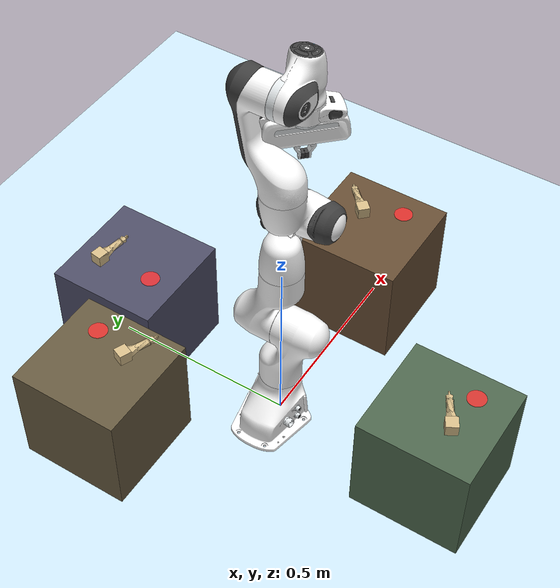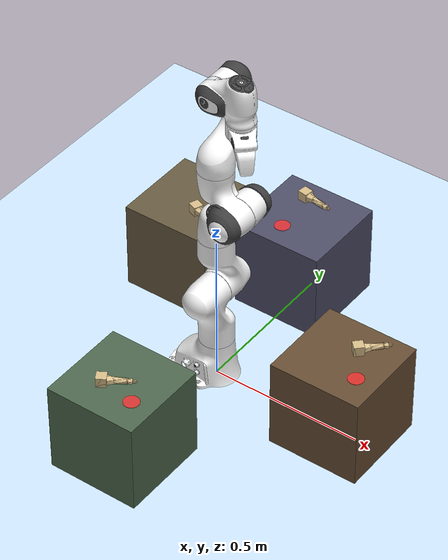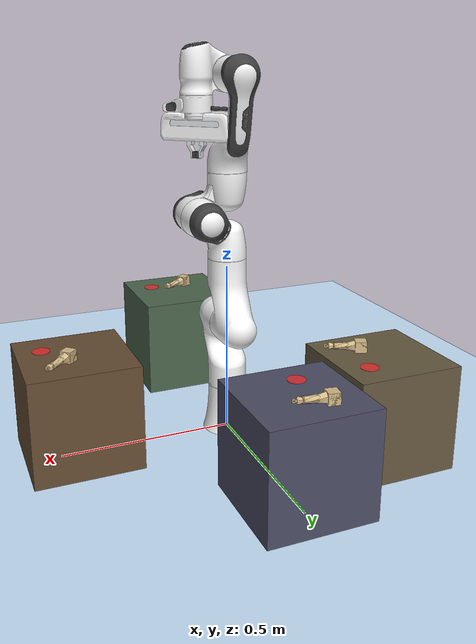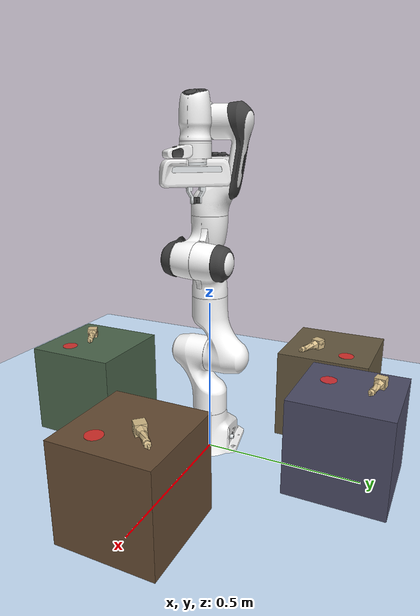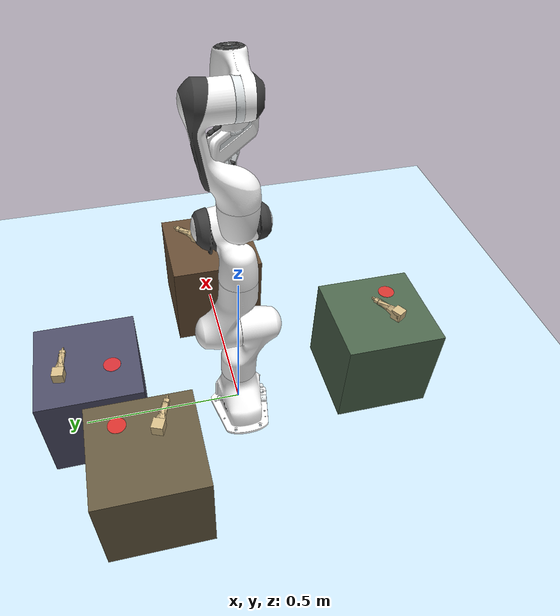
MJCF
<?xml version='1.0' encoding='utf-8'?>
<mujoco model="panda">
  <compiler angle="radian" meshdir="assets" autolimits="true" />

  <option integrator="implicit" />
  <option gravity="0 0 -9.81" />

  <default>
    <default class="panda">
      <material specular="0.5" shininess="0.25" />
      <joint armature="0.1" damping="1" axis="0 0 1" range="-2.8973 2.8973" />
      <general dyntype="none" biastype="none" ctrlrange="-87 87" forcerange="-87 87" />
      <default class="finger">
        <joint axis="0 1 0" type="slide" range="0 0.04" />
      </default>

      <default class="visual">
        <geom type="mesh" contype="0" conaffinity="0" group="2" />
      </default>
      <default class="collision">
        <geom type="mesh" group="3" />
        <default class="fingertip_pad_collision_1">
          <geom type="box" size="0.0085 0.004 0.0085" pos="0 0.0055 0.0445" />
        </default>
        <default class="fingertip_pad_collision_2">
          <geom type="box" size="0.003 0.002 0.003" pos="0.0055 0.002 0.05" />
        </default>
        <default class="fingertip_pad_collision_3">
          <geom type="box" size="0.003 0.002 0.003" pos="-0.0055 0.002 0.05" />
        </default>
        <default class="fingertip_pad_collision_4">
          <geom type="box" size="0.003 0.002 0.0035" pos="0.0055 0.002 0.0395" />
        </default>
        <default class="fingertip_pad_collision_5">
          <geom type="box" size="0.003 0.002 0.0035" pos="-0.0055 0.002 0.0395" />
        </default>
      </default>
    </default>
  </default>

  <asset>
    <material class="panda" name="white" rgba="1 1 1 1" />
    <material class="panda" name="off_white" rgba="0.901961 0.921569 0.929412 1" />
    <material class="panda" name="black" rgba="0.25 0.25 0.25 1" />
    <material class="panda" name="green" rgba="0 1 0 1" />
    <material class="panda" name="light_blue" rgba="0.039216 0.541176 0.780392 1" />

    <mesh name="link0_c" file="link0.stl" />
    <mesh name="link1_c" file="link1.stl" />
    <mesh name="link2_c" file="link2.stl" />
    <mesh name="link3_c" file="link3.stl" />
    <mesh name="link4_c" file="link4.stl" />
    <mesh name="link5_c0" file="link5_collision_0.obj" />
    <mesh name="link5_c1" file="link5_collision_1.obj" />
    <mesh name="link5_c2" file="link5_collision_2.obj" />
    <mesh name="link6_c" file="link6.stl" />
    <mesh name="link7_c" file="link7.stl" />
    <mesh name="hand_c" file="hand.stl" />

    <mesh file="link0_0.obj" />
    <mesh file="link0_1.obj" />
    <mesh file="link0_2.obj" />
    <mesh file="link0_3.obj" />
    <mesh file="link0_4.obj" />
    <mesh file="link0_5.obj" />
    <mesh file="link0_7.obj" />
    <mesh file="link0_8.obj" />
    <mesh file="link0_9.obj" />
    <mesh file="link0_10.obj" />
    <mesh file="link0_11.obj" />
    <mesh file="link1.obj" />
    <mesh file="link2.obj" />
    <mesh file="link3_0.obj" />
    <mesh file="link3_1.obj" />
    <mesh file="link3_2.obj" />
    <mesh file="link3_3.obj" />
    <mesh file="link4_0.obj" />
    <mesh file="link4_1.obj" />
    <mesh file="link4_2.obj" />
    <mesh file="link4_3.obj" />
    <mesh file="link5_0.obj" />
    <mesh file="link5_1.obj" />
    <mesh file="link5_2.obj" />
    <mesh file="link6_0.obj" />
    <mesh file="link6_1.obj" />
    <mesh file="link6_2.obj" />
    <mesh file="link6_3.obj" />
    <mesh file="link6_4.obj" />
    <mesh file="link6_5.obj" />
    <mesh file="link6_6.obj" />
    <mesh file="link6_7.obj" />
    <mesh file="link6_8.obj" />
    <mesh file="link6_9.obj" />
    <mesh file="link6_10.obj" />
    <mesh file="link6_11.obj" />
    <mesh file="link6_12.obj" />
    <mesh file="link6_13.obj" />
    <mesh file="link6_14.obj" />
    <mesh file="link6_15.obj" />
    <mesh file="link6_16.obj" />
    <mesh file="link7_0.obj" />
    <mesh file="link7_1.obj" />
    <mesh file="link7_2.obj" />
    <mesh file="link7_3.obj" />
    <mesh file="link7_4.obj" />
    <mesh file="link7_5.obj" />
    <mesh file="link7_6.obj" />
    <mesh file="link7_7.obj" />
    <mesh file="hand_0.obj" />
    <mesh file="hand_1.obj" />
    <mesh file="hand_2.obj" />
    <mesh file="hand_3.obj" />
    <mesh file="hand_4.obj" />
    <mesh file="finger_0.obj" />
    <mesh file="finger_1.obj" />
  <mesh name="chess_king_mesh" file="chess_king.stl" scale="0.001 0.001 0.001" /></asset>

  <worldbody>
    <light name="top" pos="0 0 2" mode="trackcom" />
    <body name="link0" childclass="panda">
      <inertial mass="0.629769" pos="-0.041018 -0.00014 0.049974" fullinertia="0.00315 0.00388 0.004285 8.2904e-7 0.00015 8.2299e-6" />
      <geom mesh="link0_0" material="off_white" class="visual" />
      <geom mesh="link0_1" material="black" class="visual" />
      <geom mesh="link0_2" material="off_white" class="visual" />
      <geom mesh="link0_3" material="black" class="visual" />
      <geom mesh="link0_4" material="off_white" class="visual" />
      <geom mesh="link0_5" material="black" class="visual" />
      <geom mesh="link0_7" material="white" class="visual" />
      <geom mesh="link0_8" material="white" class="visual" />
      <geom mesh="link0_9" material="black" class="visual" />
      <geom mesh="link0_10" material="off_white" class="visual" />
      <geom mesh="link0_11" material="white" class="visual" />
      <geom mesh="link0_c" class="collision" />
      <body name="link1" pos="0 0 0.333">
        <inertial mass="4.970684" pos="0.003875 0.002081 -0.04762" fullinertia="0.70337 0.70661 0.0091170 -0.00013900 0.0067720 0.019169" />
        <joint name="joint1" />
        <geom material="white" mesh="link1" class="visual" />
        <geom mesh="link1_c" class="collision" />
        <body name="link2" quat="1 -1 0 0">
          <inertial mass="0.646926" pos="-0.003141 -0.02872 0.003495" fullinertia="0.0079620 2.8110e-2 2.5995e-2 -3.925e-3 1.0254e-2 7.04e-4" />
          <joint name="joint2" range="-1.7628 1.7628" />
          <geom material="white" mesh="link2" class="visual" />
          <geom mesh="link2_c" class="collision" />
          <body name="link3" pos="0 -0.316 0" quat="1 1 0 0">
            <joint name="joint3" />
            <inertial mass="3.228604" pos="2.7518e-2 3.9252e-2 -6.6502e-2" fullinertia="3.7242e-2 3.6155e-2 1.083e-2 -4.761e-3 -1.1396e-2 -1.2805e-2" />
            <geom mesh="link3_0" material="white" class="visual" />
            <geom mesh="link3_1" material="white" class="visual" />
            <geom mesh="link3_2" material="white" class="visual" />
            <geom mesh="link3_3" material="black" class="visual" />
            <geom mesh="link3_c" class="collision" />
            <body name="link4" pos="0.0825 0 0" quat="1 1 0 0">
              <inertial mass="3.587895" pos="-5.317e-2 1.04419e-1 2.7454e-2" fullinertia="2.5853e-2 1.9552e-2 2.8323e-2 7.796e-3 -1.332e-3 8.641e-3" />
              <joint name="joint4" range="-3.0718 -0.0698" />
              <geom mesh="link4_0" material="white" class="visual" />
              <geom mesh="link4_1" material="white" class="visual" />
              <geom mesh="link4_2" material="black" class="visual" />
              <geom mesh="link4_3" material="white" class="visual" />
              <geom mesh="link4_c" class="collision" />
              <body name="link5" pos="-0.0825 0.384 0" quat="1 -1 0 0">
                <inertial mass="1.225946" pos="-1.1953e-2 4.1065e-2 -3.8437e-2" fullinertia="3.5549e-2 2.9474e-2 8.627e-3 -2.117e-3 -4.037e-3 2.29e-4" />
                <joint name="joint5" />
                <geom mesh="link5_0" material="black" class="visual" />
                <geom mesh="link5_1" material="white" class="visual" />
                <geom mesh="link5_2" material="white" class="visual" />
                <geom mesh="link5_c0" class="collision" />
                <geom mesh="link5_c1" class="collision" />
                <geom mesh="link5_c2" class="collision" />
                <body name="link6" quat="1 1 0 0">
                  <inertial mass="1.666555" pos="6.0149e-2 -1.4117e-2 -1.0517e-2" fullinertia="1.964e-3 4.354e-3 5.433e-3 1.09e-4 -1.158e-3 3.41e-4" />
                  <joint name="joint6" range="-0.0175 3.7525" />
                  <geom mesh="link6_0" material="off_white" class="visual" />
                  <geom mesh="link6_1" material="white" class="visual" />
                  <geom mesh="link6_2" material="black" class="visual" />
                  <geom mesh="link6_3" material="white" class="visual" />
                  <geom mesh="link6_4" material="white" class="visual" />
                  <geom mesh="link6_5" material="white" class="visual" />
                  <geom mesh="link6_6" material="white" class="visual" />
                  <geom mesh="link6_7" material="light_blue" class="visual" />
                  <geom mesh="link6_8" material="light_blue" class="visual" />
                  <geom mesh="link6_9" material="black" class="visual" />
                  <geom mesh="link6_10" material="black" class="visual" />
                  <geom mesh="link6_11" material="white" class="visual" />
                  <geom mesh="link6_12" material="green" class="visual" />
                  <geom mesh="link6_13" material="white" class="visual" />
                  <geom mesh="link6_14" material="black" class="visual" />
                  <geom mesh="link6_15" material="black" class="visual" />
                  <geom mesh="link6_16" material="white" class="visual" />
                  <geom mesh="link6_c" class="collision" />
                  <body name="link7" pos="0.088 0 0" quat="1 1 0 0">
                    <inertial mass="7.35522e-01" pos="1.0517e-2 -4.252e-3 6.1597e-2" fullinertia="1.2516e-2 1.0027e-2 4.815e-3 -4.28e-4 -1.196e-3 -7.41e-4" />
                    <joint name="joint7" />
                    <geom mesh="link7_0" material="white" class="visual" />
                    <geom mesh="link7_1" material="black" class="visual" />
                    <geom mesh="link7_2" material="black" class="visual" />
                    <geom mesh="link7_3" material="black" class="visual" />
                    <geom mesh="link7_4" material="black" class="visual" />
                    <geom mesh="link7_5" material="black" class="visual" />
                    <geom mesh="link7_6" material="black" class="visual" />
                    <geom mesh="link7_7" material="white" class="visual" />
                    <geom mesh="link7_c" class="collision" />
                    <body name="hand" pos="0 0 0.107" quat="0.9238795 0 0 -0.3826834">
                      <inertial mass="0.73" pos="-0.01 0 0.03" diaginertia="0.001 0.0025 0.0017" />
                      <geom mesh="hand_0" material="off_white" class="visual" />
                      <geom mesh="hand_1" material="black" class="visual" />
                      <geom mesh="hand_2" material="black" class="visual" />
                      <geom mesh="hand_3" material="white" class="visual" />
                      <geom mesh="hand_4" material="off_white" class="visual" />
                      <geom mesh="hand_c" class="collision" />
                      <body name="left_finger" pos="0 0 0.0584">
                        <inertial mass="0.015" pos="0 0 0" diaginertia="2.375e-6 2.375e-6 7.5e-7" />
                        <joint name="finger_joint1" class="finger" />
                        <geom mesh="finger_0" material="off_white" class="visual" />
                        <geom mesh="finger_1" material="black" class="visual" />
                        <geom mesh="finger_0" class="collision" />
                        <geom class="fingertip_pad_collision_1" />
                        <geom class="fingertip_pad_collision_2" />
                        <geom class="fingertip_pad_collision_3" />
                        <geom class="fingertip_pad_collision_4" />
                        <geom class="fingertip_pad_collision_5" />
                      </body>
                      <body name="right_finger" pos="0 0 0.0584" quat="0 0 0 1">
                        <inertial mass="0.015" pos="0 0 0" diaginertia="2.375e-6 2.375e-6 7.5e-7" />
                        <joint name="finger_joint2" class="finger" />
                        <geom mesh="finger_0" material="off_white" class="visual" />
                        <geom mesh="finger_1" material="black" class="visual" />
                        <geom mesh="finger_0" class="collision" />
                        <geom class="fingertip_pad_collision_1" />
                        <geom class="fingertip_pad_collision_2" />
                        <geom class="fingertip_pad_collision_3" />
                        <geom class="fingertip_pad_collision_4" />
                        <geom class="fingertip_pad_collision_5" />
                      </body>
                    </body>
                  </body>
                </body>
              </body>
            </body>
          </body>
        </body>
      </body>
    </body>
    <geom name="ground" type="plane" size="3 3 0.1" rgba="0.8 0.9 1 1" />

  <geom name="table_0" type="box" size="0.15 0.15 0.15" pos="0.45 0.0 0.15" rgba="0.4 0.3 0.2 1" friction="1.5 0.5 0.1" contype="1" conaffinity="1" /><geom name="table_1" type="box" size="0.15 0.15 0.15" pos="0.0 -0.45 0.15" rgba="0.3 0.4 0.3 1" friction="1.5 0.5 0.1" contype="1" conaffinity="1" /><geom name="table_2" type="box" size="0.15 0.15 0.15" pos="0.0 0.45 0.15" rgba="0.3 0.3 0.4 1" friction="1.5 0.5 0.1" contype="1" conaffinity="1" /><geom name="table_3" type="box" size="0.15 0.15 0.15" pos="-0.32 0.32 0.15" rgba="0.4 0.35 0.25 1" friction="1.5 0.5 0.1" contype="1" conaffinity="1" /><body name="ChessPiece_0" pos="0.4724235169481358 0.01773822829778718 0.33199999999999996" quat="0.653422487059944 -0.27025743284993536 0.653422487059944 0.27025743284993536"><freejoint name="chess_piece_joint_0" /><geom name="chess_piece_visual_0" type="mesh" mesh="chess_king_mesh" rgba="0.85 0.75 0.55 1" contype="0" conaffinity="0" mass="0" /><geom name="chess_piece_base_col_0" type="box" size="0.016 0.016 0.016" pos="0.016 0.016 0.016" rgba="0.85 0.75 0.55 0.3" density="500" friction="1.5 1.5 0.5" contype="1" conaffinity="1" condim="4" /><geom name="chess_piece_stem_col_0" type="cylinder" size="0.010 0.030" pos="0.016 0.016 0.060" rgba="0.85 0.75 0.55 0.2" density="500" friction="1.5 0.5 0.1" contype="1" conaffinity="1" condim="4" /></body><body name="ChessPiece_1" pos="-0.04389069061856347 -0.515034757519954 0.33199999999999996" quat="0.6815321473476841 -0.18845147581776778 0.6815321473476841 0.18845147581776778"><freejoint name="chess_piece_joint_1" /><geom name="chess_piece_visual_1" type="mesh" mesh="chess_king_mesh" rgba="0.85 0.75 0.55 1" contype="0" conaffinity="0" mass="0" /><geom name="chess_piece_base_col_1" type="box" size="0.016 0.016 0.016" pos="0.016 0.016 0.016" rgba="0.85 0.75 0.55 0.3" density="500" friction="1.5 1.5 0.5" contype="1" conaffinity="1" condim="4" /><geom name="chess_piece_stem_col_1" type="cylinder" size="0.010 0.030" pos="0.016 0.016 0.060" rgba="0.85 0.75 0.55 0.2" density="500" friction="1.5 0.5 0.1" contype="1" conaffinity="1" condim="4" /></body><body name="ChessPiece_2" pos="-0.06730873899446582 0.5129249503375074 0.33199999999999996" quat="0.704977785098406 0.05483018442414537 0.704977785098406 -0.05483018442414537"><freejoint name="chess_piece_joint_2" /><geom name="chess_piece_visual_2" type="mesh" mesh="chess_king_mesh" rgba="0.85 0.75 0.55 1" contype="0" conaffinity="0" mass="0" /><geom name="chess_piece_base_col_2" type="box" size="0.016 0.016 0.016" pos="0.016 0.016 0.016" rgba="0.85 0.75 0.55 0.3" density="500" friction="1.5 1.5 0.5" contype="1" conaffinity="1" condim="4" /><geom name="chess_piece_stem_col_2" type="cylinder" size="0.010 0.030" pos="0.016 0.016 0.060" rgba="0.85 0.75 0.55 0.2" density="500" friction="1.5 0.5 0.1" contype="1" conaffinity="1" condim="4" /></body><body name="ChessPiece_3" pos="-0.30182128594243907 0.2683335966928087 0.33199999999999996" quat="0.6936978390769422 0.1370523063148555 0.6936978390769422 -0.1370523063148555"><freejoint name="chess_piece_joint_3" /><geom name="chess_piece_visual_3" type="mesh" mesh="chess_king_mesh" rgba="0.85 0.75 0.55 1" contype="0" conaffinity="0" mass="0" /><geom name="chess_piece_base_col_3" type="box" size="0.016 0.016 0.016" pos="0.016 0.016 0.016" rgba="0.85 0.75 0.55 0.3" density="500" friction="1.5 1.5 0.5" contype="1" conaffinity="1" condim="4" /><geom name="chess_piece_stem_col_3" type="cylinder" size="0.010 0.030" pos="0.016 0.016 0.060" rgba="0.85 0.75 0.55 0.2" density="500" friction="1.5 0.5 0.1" contype="1" conaffinity="1" condim="4" /></body><geom name="drop_target_0" type="cylinder" size="0.025 0.001" pos="0.5297304795770426 -0.05483888565834638 0.301" rgba="1 0.2 0.2 0.8" contype="0" conaffinity="0" /><geom name="drop_target_1" type="cylinder" size="0.025 0.001" pos="0.07592879566736768 -0.5032874832695525 0.301" rgba="1 0.2 0.2 0.8" contype="0" conaffinity="0" /><geom name="drop_target_2" type="cylinder" size="0.025 0.001" pos="-0.0315565725018511 0.3787147840056322 0.301" rgba="1 0.2 0.2 0.8" contype="0" conaffinity="0" /><geom name="drop_target_3" type="cylinder" size="0.025 0.001" pos="-0.2430842576363621 0.38400022620050556 0.301" rgba="1 0.2 0.2 0.8" contype="0" conaffinity="0" /></worldbody>

  <tendon>
    <fixed name="split">
      <joint joint="finger_joint1" coef="0.5" />
      <joint joint="finger_joint2" coef="0.5" />
    </fixed>
  </tendon>

  <equality>
    <joint joint1="finger_joint1" joint2="finger_joint2" solimp="0.95 0.99 0.001" solref="0.005 1" />
  </equality>

  <actuator>
    <general class="panda" name="actuator1" joint="joint1" gainprm="1" />
    <general class="panda" name="actuator2" joint="joint2" gainprm="1" />
    <general class="panda" name="actuator3" joint="joint3" gainprm="1" />
    <general class="panda" name="actuator4" joint="joint4" gainprm="1" />
    <general class="panda" name="actuator5" joint="joint5" gainprm="1" ctrlrange="-12 12" forcerange="-12 12" />
    <general class="panda" name="actuator6" joint="joint6" gainprm="1" forcerange="-12 12" ctrlrange="-12 12" />
    <general class="panda" name="actuator7" joint="joint7" gainprm="1" ctrlrange="-12 12" forcerange="-12 12" />
    <position name="actuator8" tendon="split" ctrlrange="0.005 0.04" kp="400" />
  </actuator>

</mujoco>
